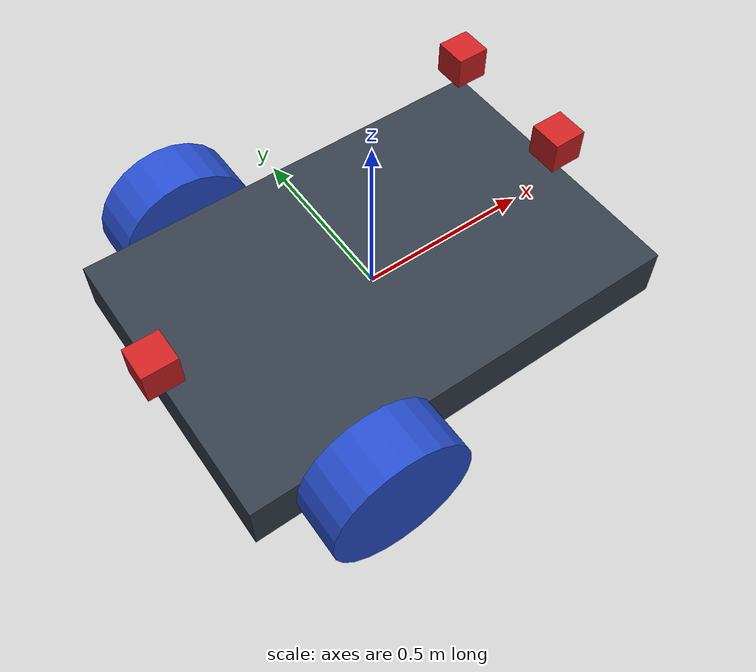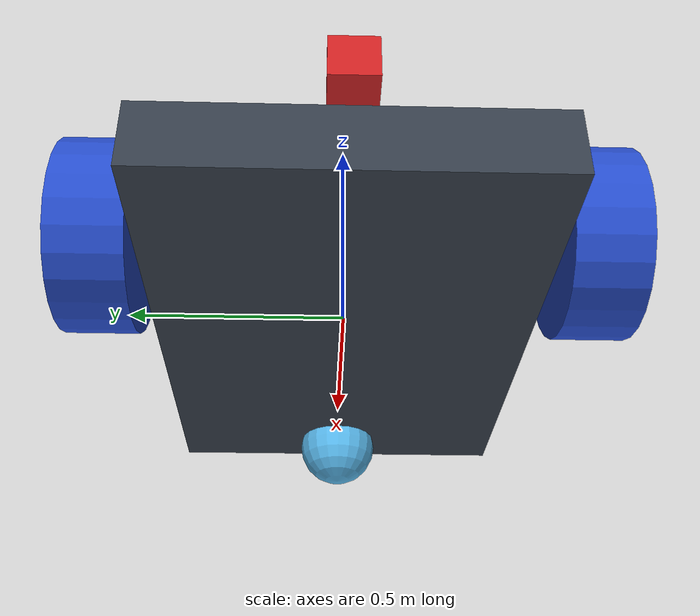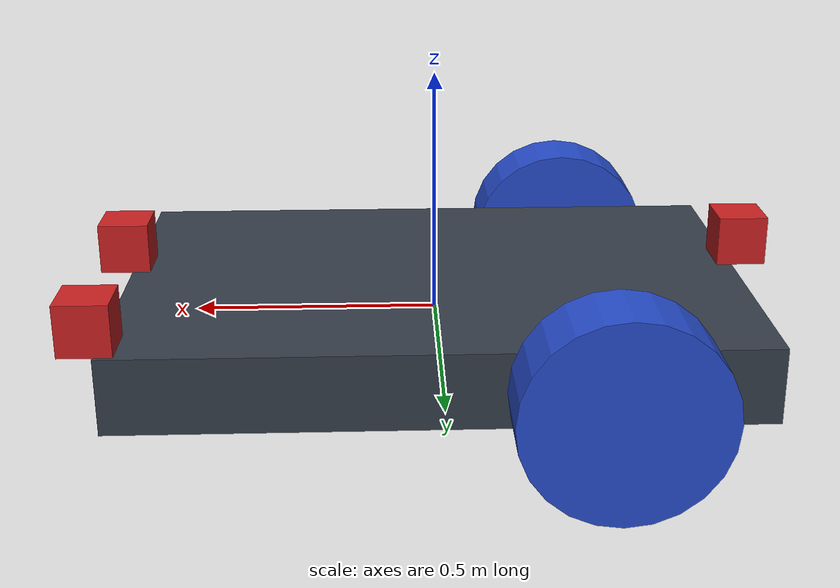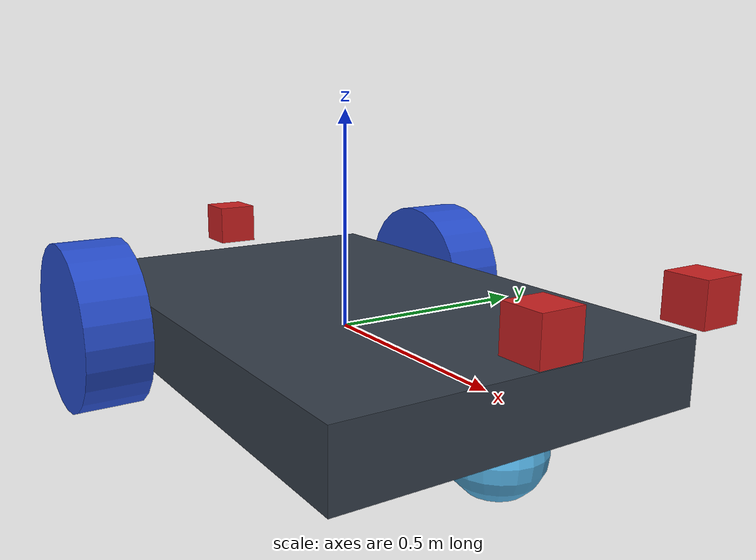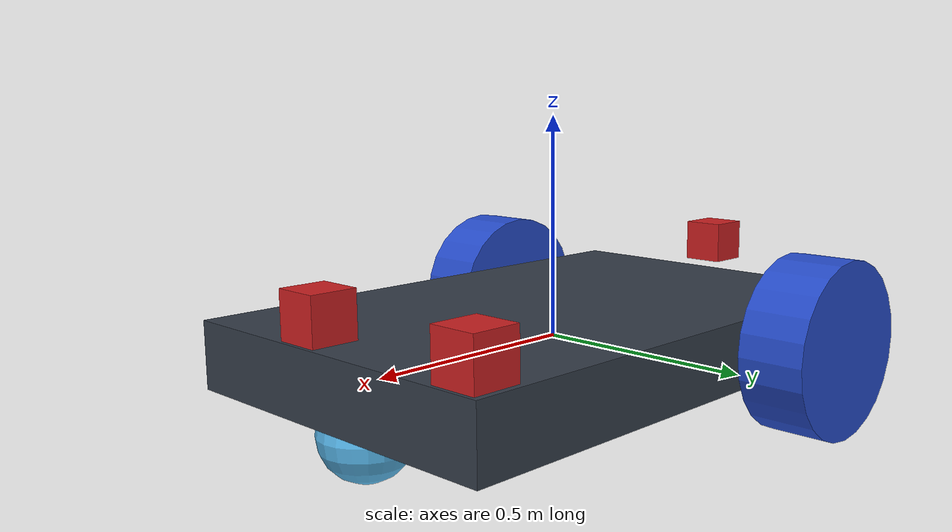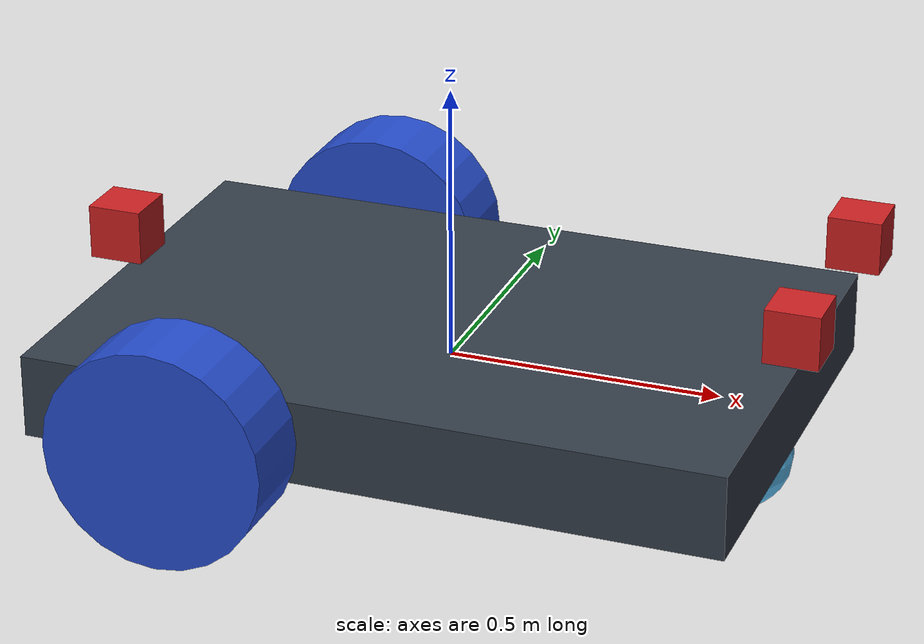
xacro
<?xml version="1.0" ?>
<robot name="base" xmlns:xacro="http://www.ros.org/wiki/xacro">

  <xacro:include filename="model_constants.xacro"/>
  <xacro:property name="base_length" value="${50*itom}" />
  <xacro:property name="base_width" value="${2*(base_length/3)}" />
  <xacro:property name="base_depth" value="${6*itom}" />
  <xacro:property name="base_height" value="${0.4}" />
  <xacro:property name="caster_radius" value="${(base_height/4) - .00}" />

  <material name="black">
    <color rgba="0.0 0.0 0.0 1.0"/>
  </material>
  <material name="blue">
    <color rgba="0.203125 0.23828125 0.28515625 1.0"/>
  </material>
  <material name="green">
    <color rgba="0.0 0.8 0.0 1.0"/>
  </material>
  <material name="grey">
    <color rgba="0.2 0.2 0.2 1.0"/>
  </material>
  <material name="orange">
    <color rgba="1.0 0.423529411765 0.0392156862745 1.0"/>
  </material>
  <material name="brown">
    <color rgba="0.870588235294 0.811764705882 0.764705882353 1.0"/>
  </material>
  <material name="red">
    <color rgba="0.80078125 0.12890625 0.1328125 1.0"/>
  </material>
  <material name="white">
    <color rgba="1.0 1.0 1.0 1.0"/>
  </material>

  <link name="base_link">
    <!-- pose and inertial -->
    <pose>0 0 ${base_height + 0.1} 0 0 0</pose>
    <inertial>
      <mass value="60"/>
      <origin rpy="0 0 0" xyz="0 0 ${base_height}"/>
      <inertia ixx="0.0395416666667" ixy="0" ixz="0" iyy="0.106208333333" iyz="0" izz="0.106208333333"/>
    </inertial>
    <!-- body -->
    <collision name="collision_chassis">
      <geometry>
        <box size="${base_length} ${base_width} ${base_depth}"/>
      </geometry>
    </collision>
    <visual>
      <origin rpy="0 0 0" xyz="0 0 0"/>
      <geometry>
        <box size="${base_length} ${base_width} ${base_depth}"/>
      </geometry>
      <material name="blue"/>
    </visual>
  </link>
  <gazebo reference="base_link">
    <material>Gazebo/Orange</material>
  </gazebo>

  <!-- Caster -->
  <xacro:macro name="caster" params="x y">
    <xacro:property name="direction_x" value="rear"/>
    <xacro:if value="${x >= 0}">
      <xacro:property name="direction_x" value="front"/>
    </xacro:if>

    <xacro:property name="direction_y" value="right"/>
    <xacro:if value="${y >= 0}">
      <xacro:property name="direction_y" value="left"/>
    </xacro:if>

    <link name="link_${direction_y}_${direction_x}_caster">
      <collision name="caster_${direction_x}_${direction_y}_collision">
        <origin rpy=" 0 0 0" xyz="0 0 0"/>
        <geometry>
          <sphere radius="${caster_radius}"/>
        </geometry>
        <surface>
          <friction>
            <ode>
              <mu>0</mu>
              <mu2>0</mu2>
              <slip1>1.0</slip1>
              <slip2>1.0</slip2>
            </ode>
          </friction>
        </surface>
      </collision>
      <visual name="caster_${direction_x}_${direction_y}_visual">
        <origin rpy=" 0 0 0" xyz="0 0 0"/>
        <geometry>
          <sphere radius="${caster_radius}"/>
        </geometry>
      </visual>
    </link>

    <joint name="${direction_y}_${direction_x}_caster_joint" type="fixed">
      <origin rpy="0 0 0" xyz="${x*(base_length/2 - caster_radius)} ${y * base_width/2} ${-caster_radius}"/>
      <child link="link_${direction_y}_${direction_x}_caster"/>
      <parent link="base_link"/>
    </joint>
  </xacro:macro>
  <xacro:caster x="1" y="0" />

  <!-- Wheel -->
  <xacro:macro name="wheel_macro" params="side">
    <xacro:property name="y" value="${-(base_width/2)}"/>
    <xacro:property name="origin_y" value="${-tread_width/2}"/>
    <xacro:if value="${side == 'right'}">
      <xacro:property name="y" value="${base_width/2}"/>
      <xacro:property name="origin_y" value="${tread_width/2}"/>
    </xacro:if>
    <xacro:property name="link_name" value="link_${side}_wheel"/>
    <link name="${link_name}">
      <inertial>
        <mass value="10"/>
        <origin rpy="0 1.5707 1.5707" xyz="0 ${origin_y} 0"/>
        <inertia ixx="0.000526666666667" ixy="0" ixz="0" iyy="0.000526666666667" iyz="0" izz="0.001"/>
      </inertial>
      <collision name="link_${side}_wheel_collision">
        <origin rpy="0 1.5707 1.5707" xyz="0 ${origin_y} 0"/>
        <geometry>
          <cylinder length="${tread_width}" radius="${base_height/2}"/>
        </geometry>
        <surface>
          <friction>
            <ode>
              <mu>2</mu>
              <mu2>2</mu2>
            </ode>
          </friction>
        </surface>
      </collision>
      <visual name="${side}_wheel_visual">
        <origin rpy="0 1.5707 1.5707" xyz="0 ${origin_y} 0"/>
        <geometry>
          <cylinder length="${tread_width}" radius="${base_height/2}"/>
        </geometry>
      </visual>
    </link>

    <joint name="joint_${side}_wheel" type="continuous">
      <origin rpy="0 0 0" xyz="${-base_length/4} ${y} 0"/>
      <child link="${link_name}"/>
      <parent link="base_link"/>
      <axis rpy="0 0 0" xyz="0 1 0"/>
      <limit effort="10000" velocity="1000"/>
      <joint_properties damping="2.0" friction="2.0"/>
    </joint>

    <gazebo reference="${link_name}">
      <material>Gazebo/Blue</material>
    </gazebo>
  </xacro:macro>

  <xacro:wheel_macro side="right"/>
  <xacro:wheel_macro side="left"/>

  <!-- Diff drive -->

  <!-- Sensors -->
  <xacro:property name="realsense_length" value="${0.1}" />
  <xacro:property name="realsense_width" value="${0.1}" />
  <xacro:property name="realsense_depth" value="${0.1}" />

  <!-- Realsense -->
  <link name="realsense_link">
    <collision>
      <origin xyz="0 0 0" rpy="0 0 0"/>
      <geometry>
        <box size="${realsense_length} ${realsense_width} ${realsense_depth}"/>
      </geometry>
    </collision>
    <visual>
      <origin xyz="0 0 0" rpy="0 0 0"/>
      <geometry>
        <box size="${realsense_length} ${realsense_width} ${realsense_depth}"/>
      </geometry>
      <material name="red"/>
    </visual>
  </link>

  <joint name="realsense_joint" type="fixed">
    <origin rpy="0 0 0" xyz="${base_length/2} 0 ${base_depth}"/>
    <child link="realsense_link"/>
    <parent link="base_link"/>
  </joint>

  <gazebo reference="realsense_link">
    <material>Gazebo/Yellow</material>
  </gazebo>
  <gazebo reference="realsense_link">
    <xacro:property name="realsense_name" value="realsense" />
    <xacro:property name="frame_name" value = "realsense_frame" />
  <sensor name="${realsense_name}" type="depth">
    <update_rate>20</update_rate>
    <camera>
      <horizontal_fov>1.09606677025</horizontal_fov>
      <image>
        <format>R8G8B8</format>
        <width>640</width>
        <height>480</height>
      </image>
      <clip>
        <near>0.5</near>
        <far>9</far>
      </clip>
    </camera>
    <plugin filename="libgazebo_ros_openni_kinect.so" name="xtion_camera_controller">
      <alwaysOn>true</alwaysOn>
      <updateRate>20</updateRate>
      <cameraName>${realsense_name}</cameraName>
      <imageTopicName>/camera/depth/image_raw</imageTopicName>
      <cameraInfoTopicName>/camera/depth/camera_info</cameraInfoTopicName>
      <depthImageTopicName>/camera/depth/image_raw</depthImageTopicName>
      <depthImageInfoTopicName>/camera/depth/camera_info</depthImageInfoTopicName>
      <pointCloudTopicName>/camera/depth/points</pointCloudTopicName>
      <distortion_k1>0.0</distortion_k1>
      <distortion_k2>0.0</distortion_k2>
      <distortion_k3>0.0</distortion_k3>
      <distortion_t1>0.0</distortion_t1>
      <distortion_t2>0.0</distortion_t2>
    </plugin>
  </sensor>
</gazebo>

  <!-- Front Cam -->
  <xacro:macro name="camera_macro" params="cam_name x y z yaw">
    <xacro:property name="link_name" value="${cam_name}_link"/>
    <link name="${link_name}">
      <collision>
        <origin xyz="0 0 0" rpy="0 0 0"/>
        <geometry>
          <box size="${realsense_length} ${realsense_width} ${realsense_depth}"/>
        </geometry>
      </collision>
      <visual>
        <origin xyz="0 0 0" rpy="0 0 0"/>
        <geometry>
          <box size="${realsense_length} ${realsense_width} ${realsense_depth}"/>
        </geometry>
        <material name="red"/>
      </visual>
    </link>

    <joint name="${cam_name}_joint" type="fixed">
      <origin rpy="0 0 ${yaw}" xyz="${x} ${y} ${z}"/>
      <child link="${link_name}"/>
      <parent link="base_link"/>
    </joint>

    <gazebo reference="${link_name}">
      <material>Gazebo/Red</material>
      <sensor type="camera" name="${cam_name}">
        <update_rate>5.0</update_rate>
        <camera name="head">
          <horizontal_fov>1.3962634</horizontal_fov>
          <image>
            <width>800</width>
            <height>800</height>
            <format>R8G8B8</format>
          </image>
          <clip>
            <near>0.02</near>
            <far>300</far>
          </clip>
          <noise>
            <type>gaussian</type>
            <mean>0.0</mean>
            <stddev>0.007</stddev>
          </noise>
        </camera>
        <plugin name="camera_controller" filename="libgazebo_ros_camera.so">
          <baseline>0.2</baseline>
          <alwaysOn>true</alwaysOn>
          <updateRate>0.0</updateRate>
          <cameraName>sensors/${cam_name}</cameraName>
          <imageTopicName>image_raw</imageTopicName>
          <cameraInfoTopicName>camera_info</cameraInfoTopicName>
          <frameName>${link_name}</frameName>
          <hackBaseline>0.07</hackBaseline>
          <distortionK1>0.0</distortionK1>
          <distortionK2>0.0</distortionK2>
          <distortionK3>0.0</distortionK3>
          <distortionT1>0.0</distortionT1>
          <distortionT2>0.0</distortionT2>
        </plugin>
      </sensor>
    </gazebo>
  </xacro:macro>

  <xacro:camera_macro cam_name="front_cam" x="${base_length/2}" y="${base_width/2}" z="${base_depth}" yaw="0"/>
  <xacro:camera_macro cam_name="rear_cam" x="${-base_length/2}" y="${0}" z="${base_depth}" yaw="3.14"/>

</robot>

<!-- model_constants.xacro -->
<!--NOTE must match the constants in the control code header in utilities-->
<robot name="excavator" xmlns:xacro="http://www.ros.org/wiki/xacro">
  <!-- Shared model level constants -->
  <!-- Inches to meters conversion -->
  <xacro:property name="itom" value="0.0254" />
  <!-- Degrees to radians conversion -->
  <xacro:property name="dtor" value="${pi/180}" />
  <xacro:property name="sqrt2" value="1.41421" />

  <!-- Drivebase parameters -->
  <xacro:property name="base_length" value="${50*itom}" />
  <xacro:property name="tube_width" value="${2*itom}" />
  <xacro:property name="drivebase_beam_width" value="${11.5*itom}" />
  <xacro:property name="drivebase_front_beam_height" value="${4*itom}" />
  <xacro:property name="drivebase_total_height" value="${6*itom}" />

  <!-- Drivetrain parameters -->
  <xacro:property name="tread_end_radius" value="${(15.5/2)*itom}" />
  <xacro:property name="tread_mid_height" value="${19*itom}" />
  <xacro:property name="tread_mid_length" value="${24*itom}" />
  <xacro:property name="tread_width" value="${6*itom}" />
  <xacro:property name="tread_spacing" value="${16*itom}" />
  <xacro:property name="intertread_length" value="${39*itom}" />
  <xacro:property name="tread_slope_length" value="${11*itom}" />

  <!-- Bin parameters -->
  <!-- Length of top of bin, length of bottom is 13.86 -->
  <!-- Using the bigger size as a box instead of making complex angled shape -->
  <xacro:property name="bin_length" value="${36*itom}" />
  <xacro:property name="bin_width" value="${13.5*itom}" />
  <xacro:property name="bin_height" value="${16*itom}" />
  <xacro:property name="bin_back_height" value="${9*itom}" />
  <xacro:property name="bin_back_offset" value="${6.5*itom}" />

  <!-- Turntable parameters -->
  <xacro:property name="turntable_mass" value="${1.6}"/>
  <xacro:property name="turntable_radius" value="${4.92*itom}" />
  <!-- 1" in model plus undefined height for mounting and extra components -->
  <!-- Rounded to 2" for now -->
  <xacro:property name="turntable_height" value="${2.25*itom}" />

  <!-- Lower arm parameters -->
  <xacro:property name="lower_arm_mass" value="${.82}"/>
  <xacro:property name="lower_arm_length" value="${22*itom}" />
  <xacro:property name="lower_arm_primary_length" value="${16*itom}" />
  <xacro:property name="lower_arm_width" value="${6*itom}" />
  <xacro:property name="lower_arm_height" value="${6*itom}" />
  <xacro:property name="lower_arm_min" value="0.104" />
  <xacro:property name="lower_arm_max" value="1.55" />

  <!-- Upper arm parameters -->
  <xacro:property name="upper_arm_mass" value="${.64}"/>
  <xacro:property name="upper_arm_length" value="${20*itom}" />
  <xacro:property name="upper_arm_width" value="${4.75*itom}" />
  <xacro:property name="upper_arm_height" value="${5*itom}" />
  <xacro:property name="upper_arm_min" value="0.98"/>
  <xacro:property name="upper_arm_max" value="2.4"/>

  <!-- Scoop parameters -->
  <xacro:property name="scoop_mass" value="${.36}"/>
  <xacro:property name="scoop_width" value="${8.5*itom}" />
  <xacro:property name="scoop_length" value="${12*itom}" />
  <xacro:property name="scoop_diameter" value="${12.5*itom}" />
  <xacro:property name="scoop_min" value="-1.16614" />
  <xacro:property name="scoop_max" value="1.62" />
</robot>
